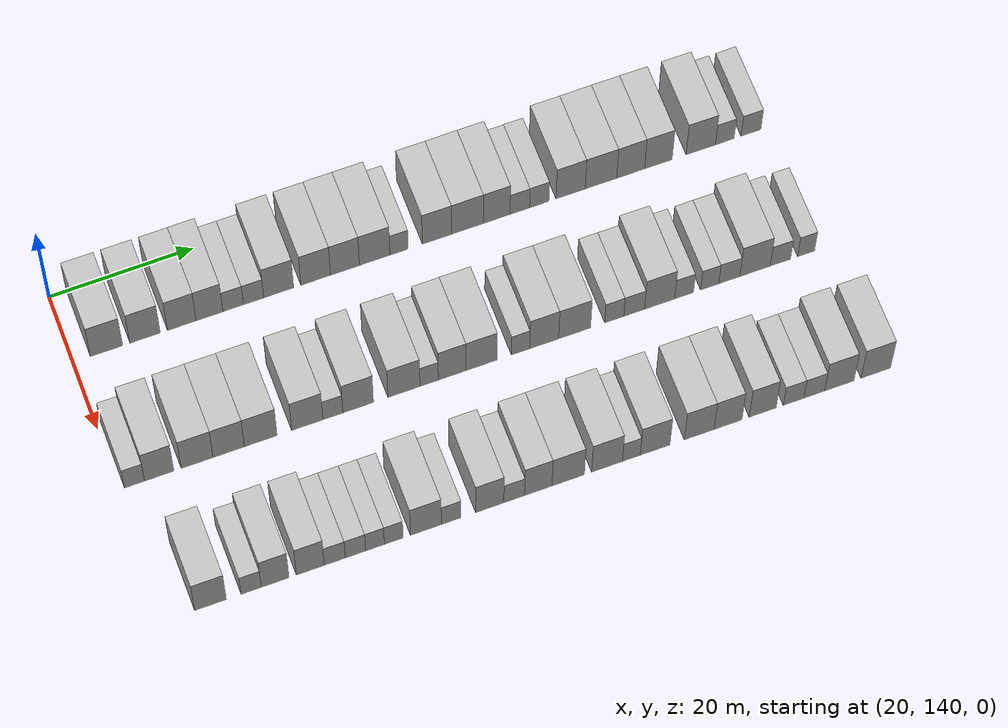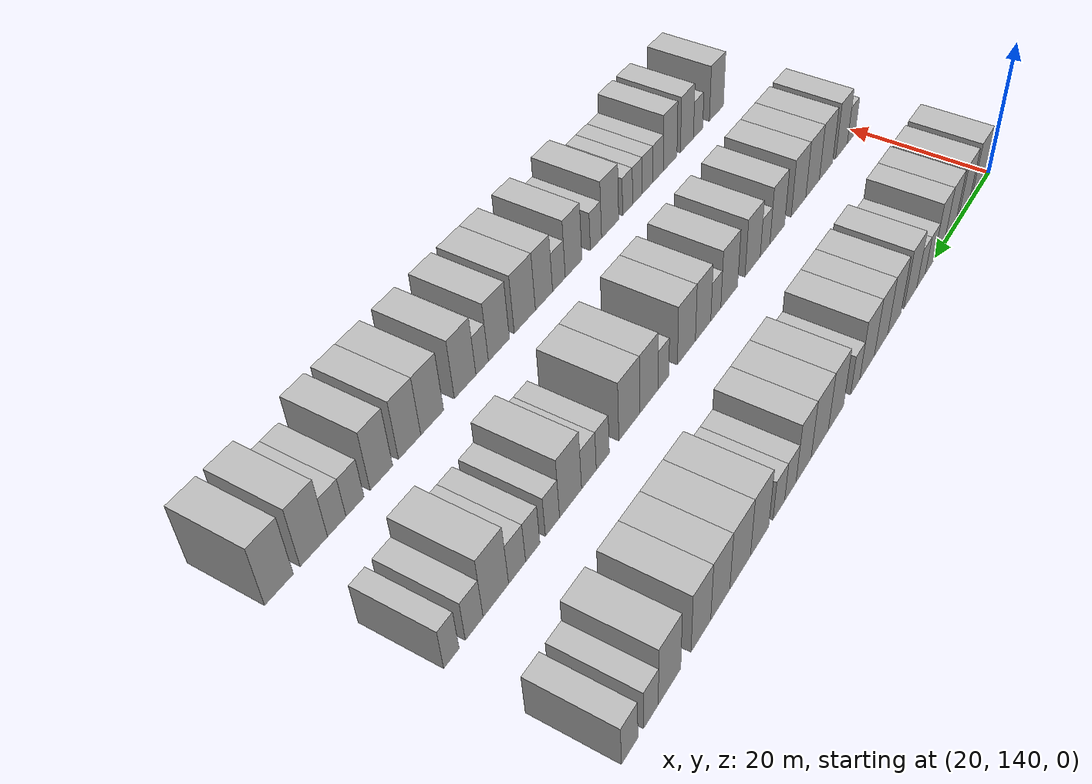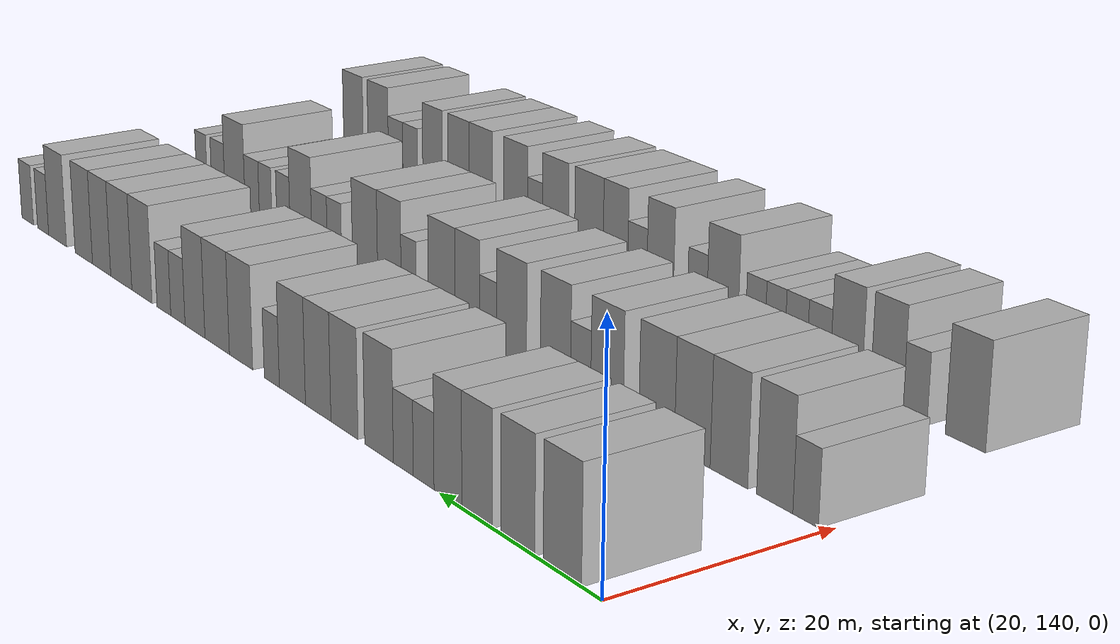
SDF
<sdf version="1.6">
 <world name="default">
  <model name="building_93">
   <static>1</static>
   <pose>25.0000 144.5838 0 0.000000 0.000000 0.000000</pose>
   <link name="link">
    <pose>0 0 4.50 0 0 0</pose>
    <collision name="collision"><geometry><box><size>10.0000 4.4687 9.0000</size></box></geometry></collision>
    <visual name="visual">
     <cast_shadows>0</cast_shadows>
     <geometry><box><size>10.0000 4.4687 9.0000</size></box></geometry>
     <material>
      <script>
       <uri>model://HANNAS_wall/materials/scripts</uri>
       <uri>model://HANNAS_wall/materials/textures</uri>
       <name>vrc/HANNAS_wall</name>
      </script>
     </material>
    </visual>
   </link>
  </model>
  <model name="building_94">
   <static>1</static>
   <pose>25.0000 149.9171 0 0.000000 0.000000 0.000000</pose>
   <link name="link">
    <pose>0 0 4.50 0 0 0</pose>
    <collision name="collision"><geometry><box><size>10.0000 4.1978 9.0000</size></box></geometry></collision>
    <visual name="visual">
     <cast_shadows>0</cast_shadows>
     <geometry><box><size>10.0000 4.1978 9.0000</size></box></geometry>
     <material>
      <script>
       <uri>model://HANNAS_wall/materials/scripts</uri>
       <uri>model://HANNAS_wall/materials/textures</uri>
       <name>vrc/HANNAS_wall</name>
      </script>
     </material>
    </visual>
   </link>
  </model>
  <model name="building_95">
   <static>1</static>
   <pose>25.0000 155.0053 0 0.000000 0.000000 0.000000</pose>
   <link name="link">
    <pose>0 0 4.50 0 0 0</pose>
    <collision name="collision"><geometry><box><size>10.0000 3.9786 9.0000</size></box></geometry></collision>
    <visual name="visual">
     <cast_shadows>0</cast_shadows>
     <geometry><box><size>10.0000 3.9786 9.0000</size></box></geometry>
     <material>
      <script>
       <uri>model://HANNAS_wall/materials/scripts</uri>
       <uri>model://HANNAS_wall/materials/textures</uri>
       <name>vrc/HANNAS_wall</name>
      </script>
     </material>
    </visual>
   </link>
  </model>
  <model name="building_96">
   <static>1</static>
   <pose>25.0000 158.8555 0 0.000000 0.000000 0.000000</pose>
   <link name="link">
    <pose>0 0 4.50 0 0 0</pose>
    <collision name="collision"><geometry><box><size>10.0000 3.7219 9.0000</size></box></geometry></collision>
    <visual name="visual">
     <cast_shadows>0</cast_shadows>
     <geometry><box><size>10.0000 3.7219 9.0000</size></box></geometry>
     <material>
      <script>
       <uri>model://HANNAS_wall/materials/scripts</uri>
       <uri>model://HANNAS_wall/materials/textures</uri>
       <name>vrc/HANNAS_wall</name>
      </script>
     </material>
    </visual>
   </link>
  </model>
  <model name="building_97">
   <static>1</static>
   <pose>25.0000 162.1447 0 0.000000 0.000000 0.000000</pose>
   <link name="link">
    <pose>0 0 3.00 0 0 0</pose>
    <collision name="collision"><geometry><box><size>10.0000 2.8566 6.0000</size></box></geometry></collision>
    <visual name="visual">
     <cast_shadows>0</cast_shadows>
     <geometry><box><size>10.0000 2.8566 6.0000</size></box></geometry>
     <material>
      <script>
       <uri>model://HANNAS_wall/materials/scripts</uri>
       <uri>model://HANNAS_wall/materials/textures</uri>
       <name>vrc/HANNAS_wall</name>
      </script>
     </material>
    </visual>
   </link>
  </model>
  <model name="building_98">
   <static>1</static>
   <pose>25.0000 164.9886 0 0.000000 0.000000 0.000000</pose>
   <link name="link">
    <pose>0 0 3.00 0 0 0</pose>
    <collision name="collision"><geometry><box><size>10.0000 2.8312 6.0000</size></box></geometry></collision>
    <visual name="visual">
     <cast_shadows>0</cast_shadows>
     <geometry><box><size>10.0000 2.8312 6.0000</size></box></geometry>
     <material>
      <script>
       <uri>model://HANNAS_wall/materials/scripts</uri>
       <uri>model://HANNAS_wall/materials/textures</uri>
       <name>vrc/HANNAS_wall</name>
      </script>
     </material>
    </visual>
   </link>
  </model>
  <model name="building_99">
   <static>1</static>
   <pose>25.0000 168.5003 0 0.000000 0.000000 0.000000</pose>
   <link name="link">
    <pose>0 0 4.50 0 0 0</pose>
    <collision name="collision"><geometry><box><size>10.0000 4.1922 9.0000</size></box></geometry></collision>
    <visual name="visual">
     <cast_shadows>0</cast_shadows>
     <geometry><box><size>10.0000 4.1922 9.0000</size></box></geometry>
     <material>
      <script>
       <uri>model://HANNAS_wall/materials/scripts</uri>
       <uri>model://HANNAS_wall/materials/textures</uri>
       <name>vrc/HANNAS_wall</name>
      </script>
     </material>
    </visual>
   </link>
  </model>
  <model name="building_100">
   <static>1</static>
   <pose>25.0000 173.6730 0 0.000000 0.000000 0.000000</pose>
   <link name="link">
    <pose>0 0 4.50 0 0 0</pose>
    <collision name="collision"><geometry><box><size>10.0000 4.1533 9.0000</size></box></geometry></collision>
    <visual name="visual">
     <cast_shadows>0</cast_shadows>
     <geometry><box><size>10.0000 4.1533 9.0000</size></box></geometry>
     <material>
      <script>
       <uri>model://HANNAS_wall/materials/scripts</uri>
       <uri>model://HANNAS_wall/materials/textures</uri>
       <name>vrc/HANNAS_wall</name>
      </script>
     </material>
    </visual>
   </link>
  </model>
  <model name="building_101">
   <static>1</static>
   <pose>25.0000 177.7759 0 0.000000 0.000000 0.000000</pose>
   <link name="link">
    <pose>0 0 4.50 0 0 0</pose>
    <collision name="collision"><geometry><box><size>10.0000 4.0525 9.0000</size></box></geometry></collision>
    <visual name="visual">
     <cast_shadows>0</cast_shadows>
     <geometry><box><size>10.0000 4.0525 9.0000</size></box></geometry>
     <material>
      <script>
       <uri>model://HANNAS_wall/materials/scripts</uri>
       <uri>model://HANNAS_wall/materials/textures</uri>
       <name>vrc/HANNAS_wall</name>
      </script>
     </material>
    </visual>
   </link>
  </model>
  <model name="building_102">
   <static>1</static>
   <pose>25.0000 181.9465 0 0.000000 0.000000 0.000000</pose>
   <link name="link">
    <pose>0 0 4.50 0 0 0</pose>
    <collision name="collision"><geometry><box><size>10.0000 4.2887 9.0000</size></box></geometry></collision>
    <visual name="visual">
     <cast_shadows>0</cast_shadows>
     <geometry><box><size>10.0000 4.2887 9.0000</size></box></geometry>
     <material>
      <script>
       <uri>model://HANNAS_wall/materials/scripts</uri>
       <uri>model://HANNAS_wall/materials/textures</uri>
       <name>vrc/HANNAS_wall</name>
      </script>
     </material>
    </visual>
   </link>
  </model>
  <model name="building_103">
   <static>1</static>
   <pose>25.0000 185.3738 0 0.000000 0.000000 0.000000</pose>
   <link name="link">
    <pose>0 0 3.00 0 0 0</pose>
    <collision name="collision"><geometry><box><size>10.0000 2.5660 6.0000</size></box></geometry></collision>
    <visual name="visual">
     <cast_shadows>0</cast_shadows>
     <geometry><box><size>10.0000 2.5660 6.0000</size></box></geometry>
     <material>
      <script>
       <uri>model://HANNAS_wall/materials/scripts</uri>
       <uri>model://HANNAS_wall/materials/textures</uri>
       <name>vrc/HANNAS_wall</name>
      </script>
     </material>
    </visual>
   </link>
  </model>
  <model name="building_104">
   <static>1</static>
   <pose>25.0000 190.7271 0 0.000000 0.000000 0.000000</pose>
   <link name="link">
    <pose>0 0 4.50 0 0 0</pose>
    <collision name="collision"><geometry><box><size>10.0000 4.1405 9.0000</size></box></geometry></collision>
    <visual name="visual">
     <cast_shadows>0</cast_shadows>
     <geometry><box><size>10.0000 4.1405 9.0000</size></box></geometry>
     <material>
      <script>
       <uri>model://HANNAS_wall/materials/scripts</uri>
       <uri>model://HANNAS_wall/materials/textures</uri>
       <name>vrc/HANNAS_wall</name>
      </script>
     </material>
    </visual>
   </link>
  </model>
  <model name="building_105">
   <static>1</static>
   <pose>25.0000 195.0423 0 0.000000 0.000000 0.000000</pose>
   <link name="link">
    <pose>0 0 4.50 0 0 0</pose>
    <collision name="collision"><geometry><box><size>10.0000 4.4898 9.0000</size></box></geometry></collision>
    <visual name="visual">
     <cast_shadows>0</cast_shadows>
     <geometry><box><size>10.0000 4.4898 9.0000</size></box></geometry>
     <material>
      <script>
       <uri>model://HANNAS_wall/materials/scripts</uri>
       <uri>model://HANNAS_wall/materials/textures</uri>
       <name>vrc/HANNAS_wall</name>
      </script>
     </material>
    </visual>
   </link>
  </model>
  <model name="building_106">
   <static>1</static>
   <pose>25.0000 199.1777 0 0.000000 0.000000 0.000000</pose>
   <link name="link">
    <pose>0 0 4.50 0 0 0</pose>
    <collision name="collision"><geometry><box><size>10.0000 3.7812 9.0000</size></box></geometry></collision>
    <visual name="visual">
     <cast_shadows>0</cast_shadows>
     <geometry><box><size>10.0000 3.7812 9.0000</size></box></geometry>
     <material>
      <script>
       <uri>model://HANNAS_wall/materials/scripts</uri>
       <uri>model://HANNAS_wall/materials/textures</uri>
       <name>vrc/HANNAS_wall</name>
      </script>
     </material>
    </visual>
   </link>
  </model>
  <model name="building_107">
   <static>1</static>
   <pose>25.0000 202.4531 0 0.000000 0.000000 0.000000</pose>
   <link name="link">
    <pose>0 0 3.00 0 0 0</pose>
    <collision name="collision"><geometry><box><size>10.0000 2.7696 6.0000</size></box></geometry></collision>
    <visual name="visual">
     <cast_shadows>0</cast_shadows>
     <geometry><box><size>10.0000 2.7696 6.0000</size></box></geometry>
     <material>
      <script>
       <uri>model://HANNAS_wall/materials/scripts</uri>
       <uri>model://HANNAS_wall/materials/textures</uri>
       <name>vrc/HANNAS_wall</name>
      </script>
     </material>
    </visual>
   </link>
  </model>
  <model name="building_108">
   <static>1</static>
   <pose>25.0000 205.2136 0 0.000000 0.000000 0.000000</pose>
   <link name="link">
    <pose>0 0 3.00 0 0 0</pose>
    <collision name="collision"><geometry><box><size>10.0000 2.7514 6.0000</size></box></geometry></collision>
    <visual name="visual">
     <cast_shadows>0</cast_shadows>
     <geometry><box><size>10.0000 2.7514 6.0000</size></box></geometry>
     <material>
      <script>
       <uri>model://HANNAS_wall/materials/scripts</uri>
       <uri>model://HANNAS_wall/materials/textures</uri>
       <name>vrc/HANNAS_wall</name>
      </script>
     </material>
    </visual>
   </link>
  </model>
  <model name="building_109">
   <static>1</static>
   <pose>25.0000 209.6725 0 0.000000 0.000000 0.000000</pose>
   <link name="link">
    <pose>0 0 4.50 0 0 0</pose>
    <collision name="collision"><geometry><box><size>10.0000 4.1665 9.0000</size></box></geometry></collision>
    <visual name="visual">
     <cast_shadows>0</cast_shadows>
     <geometry><box><size>10.0000 4.1665 9.0000</size></box></geometry>
     <material>
      <script>
       <uri>model://HANNAS_wall/materials/scripts</uri>
       <uri>model://HANNAS_wall/materials/textures</uri>
       <name>vrc/HANNAS_wall</name>
      </script>
     </material>
    </visual>
   </link>
  </model>
  <model name="building_110">
   <static>1</static>
   <pose>25.0000 214.0048 0 0.000000 0.000000 0.000000</pose>
   <link name="link">
    <pose>0 0 4.50 0 0 0</pose>
    <collision name="collision"><geometry><box><size>10.0000 4.4981 9.0000</size></box></geometry></collision>
    <visual name="visual">
     <cast_shadows>0</cast_shadows>
     <geometry><box><size>10.0000 4.4981 9.0000</size></box></geometry>
     <material>
      <script>
       <uri>model://HANNAS_wall/materials/scripts</uri>
       <uri>model://HANNAS_wall/materials/textures</uri>
       <name>vrc/HANNAS_wall</name>
      </script>
     </material>
    </visual>
   </link>
  </model>
  <model name="building_111">
   <static>1</static>
   <pose>25.0000 218.2558 0 0.000000 0.000000 0.000000</pose>
   <link name="link">
    <pose>0 0 4.50 0 0 0</pose>
    <collision name="collision"><geometry><box><size>10.0000 4.0040 9.0000</size></box></geometry></collision>
    <visual name="visual">
     <cast_shadows>0</cast_shadows>
     <geometry><box><size>10.0000 4.0040 9.0000</size></box></geometry>
     <material>
      <script>
       <uri>model://HANNAS_wall/materials/scripts</uri>
       <uri>model://HANNAS_wall/materials/textures</uri>
       <name>vrc/HANNAS_wall</name>
      </script>
     </material>
    </visual>
   </link>
  </model>
  <model name="building_112">
   <static>1</static>
   <pose>25.0000 222.2259 0 0.000000 0.000000 0.000000</pose>
   <link name="link">
    <pose>0 0 4.50 0 0 0</pose>
    <collision name="collision"><geometry><box><size>10.0000 3.9362 9.0000</size></box></geometry></collision>
    <visual name="visual">
     <cast_shadows>0</cast_shadows>
     <geometry><box><size>10.0000 3.9362 9.0000</size></box></geometry>
     <material>
      <script>
       <uri>model://HANNAS_wall/materials/scripts</uri>
       <uri>model://HANNAS_wall/materials/textures</uri>
       <name>vrc/HANNAS_wall</name>
      </script>
     </material>
    </visual>
   </link>
  </model>
  <model name="building_113">
   <static>1</static>
   <pose>25.0000 228.3020 0 0.000000 0.000000 0.000000</pose>
   <link name="link">
    <pose>0 0 4.50 0 0 0</pose>
    <collision name="collision"><geometry><box><size>10.0000 4.2160 9.0000</size></box></geometry></collision>
    <visual name="visual">
     <cast_shadows>0</cast_shadows>
     <geometry><box><size>10.0000 4.2160 9.0000</size></box></geometry>
     <material>
      <script>
       <uri>model://HANNAS_wall/materials/scripts</uri>
       <uri>model://HANNAS_wall/materials/textures</uri>
       <name>vrc/HANNAS_wall</name>
      </script>
     </material>
    </visual>
   </link>
  </model>
  <model name="building_114">
   <static>1</static>
   <pose>25.0000 231.7556 0 0.000000 0.000000 0.000000</pose>
   <link name="link">
    <pose>0 0 3.00 0 0 0</pose>
    <collision name="collision"><geometry><box><size>10.0000 2.6911 6.0000</size></box></geometry></collision>
    <visual name="visual">
     <cast_shadows>0</cast_shadows>
     <geometry><box><size>10.0000 2.6911 6.0000</size></box></geometry>
     <material>
      <script>
       <uri>model://HANNAS_wall/materials/scripts</uri>
       <uri>model://HANNAS_wall/materials/textures</uri>
       <name>vrc/HANNAS_wall</name>
      </script>
     </material>
    </visual>
   </link>
  </model>
  <model name="building_115">
   <static>1</static>
   <pose>25.0000 235.5366 0 0.000000 0.000000 0.000000</pose>
   <link name="link">
    <pose>0 0 3.00 0 0 0</pose>
    <collision name="collision"><geometry><box><size>10.0000 2.8711 6.0000</size></box></geometry></collision>
    <visual name="visual">
     <cast_shadows>0</cast_shadows>
     <geometry><box><size>10.0000 2.8711 6.0000</size></box></geometry>
     <material>
      <script>
       <uri>model://HANNAS_wall/materials/scripts</uri>
       <uri>model://HANNAS_wall/materials/textures</uri>
       <name>vrc/HANNAS_wall</name>
      </script>
     </material>
    </visual>
   </link>
  </model>
  <model name="building_211">
   <static>1</static>
   <pose>44.0000 142.0426 0 0.000000 0.000000 0.000000</pose>
   <link name="link">
    <pose>0 0 3.00 0 0 0</pose>
    <collision name="collision"><geometry><box><size>10.0000 2.7430 6.0000</size></box></geometry></collision>
    <visual name="visual">
     <cast_shadows>0</cast_shadows>
     <geometry><box><size>10.0000 2.7430 6.0000</size></box></geometry>
     <material>
      <script>
       <uri>model://HANNAS_wall/materials/scripts</uri>
       <uri>model://HANNAS_wall/materials/textures</uri>
       <name>vrc/HANNAS_wall</name>
      </script>
     </material>
    </visual>
   </link>
  </model>
  <model name="building_212">
   <static>1</static>
   <pose>44.0000 145.4141 0 0.000000 0.000000 0.000000</pose>
   <link name="link">
    <pose>0 0 4.50 0 0 0</pose>
    <collision name="collision"><geometry><box><size>10.0000 4.0000 9.0000</size></box></geometry></collision>
    <visual name="visual">
     <cast_shadows>0</cast_shadows>
     <geometry><box><size>10.0000 4.0000 9.0000</size></box></geometry>
     <material>
      <script>
       <uri>model://HANNAS_wall/materials/scripts</uri>
       <uri>model://HANNAS_wall/materials/textures</uri>
       <name>vrc/HANNAS_wall</name>
      </script>
     </material>
    </visual>
   </link>
  </model>
  <model name="building_213">
   <static>1</static>
   <pose>44.0000 150.5980 0 0.000000 0.000000 0.000000</pose>
   <link name="link">
    <pose>0 0 4.50 0 0 0</pose>
    <collision name="collision"><geometry><box><size>10.0000 4.3679 9.0000</size></box></geometry></collision>
    <visual name="visual">
     <cast_shadows>0</cast_shadows>
     <geometry><box><size>10.0000 4.3679 9.0000</size></box></geometry>
     <material>
      <script>
       <uri>model://HANNAS_wall/materials/scripts</uri>
       <uri>model://HANNAS_wall/materials/textures</uri>
       <name>vrc/HANNAS_wall</name>
      </script>
     </material>
    </visual>
   </link>
  </model>
  <model name="building_214">
   <static>1</static>
   <pose>44.0000 154.9379 0 0.000000 0.000000 0.000000</pose>
   <link name="link">
    <pose>0 0 4.50 0 0 0</pose>
    <collision name="collision"><geometry><box><size>10.0000 4.3117 9.0000</size></box></geometry></collision>
    <visual name="visual">
     <cast_shadows>0</cast_shadows>
     <geometry><box><size>10.0000 4.3117 9.0000</size></box></geometry>
     <material>
      <script>
       <uri>model://HANNAS_wall/materials/scripts</uri>
       <uri>model://HANNAS_wall/materials/textures</uri>
       <name>vrc/HANNAS_wall</name>
      </script>
     </material>
    </visual>
   </link>
  </model>
  <model name="building_215">
   <static>1</static>
   <pose>44.0000 159.3380 0 0.000000 0.000000 0.000000</pose>
   <link name="link">
    <pose>0 0 4.50 0 0 0</pose>
    <collision name="collision"><geometry><box><size>10.0000 4.4886 9.0000</size></box></geometry></collision>
    <visual name="visual">
     <cast_shadows>0</cast_shadows>
     <geometry><box><size>10.0000 4.4886 9.0000</size></box></geometry>
     <material>
      <script>
       <uri>model://HANNAS_wall/materials/scripts</uri>
       <uri>model://HANNAS_wall/materials/textures</uri>
       <name>vrc/HANNAS_wall</name>
      </script>
     </material>
    </visual>
   </link>
  </model>
  <model name="building_216">
   <static>1</static>
   <pose>44.0000 165.7396 0 0.000000 0.000000 0.000000</pose>
   <link name="link">
    <pose>0 0 4.50 0 0 0</pose>
    <collision name="collision"><geometry><box><size>10.0000 4.3144 9.0000</size></box></geometry></collision>
    <visual name="visual">
     <cast_shadows>0</cast_shadows>
     <geometry><box><size>10.0000 4.3144 9.0000</size></box></geometry>
     <material>
      <script>
       <uri>model://HANNAS_wall/materials/scripts</uri>
       <uri>model://HANNAS_wall/materials/textures</uri>
       <name>vrc/HANNAS_wall</name>
      </script>
     </material>
    </visual>
   </link>
  </model>
  <model name="building_217">
   <static>1</static>
   <pose>44.0000 169.2793 0 0.000000 0.000000 0.000000</pose>
   <link name="link">
    <pose>0 0 3.00 0 0 0</pose>
    <collision name="collision"><geometry><box><size>10.0000 2.7649 6.0000</size></box></geometry></collision>
    <visual name="visual">
     <cast_shadows>0</cast_shadows>
     <geometry><box><size>10.0000 2.7649 6.0000</size></box></geometry>
     <material>
      <script>
       <uri>model://HANNAS_wall/materials/scripts</uri>
       <uri>model://HANNAS_wall/materials/textures</uri>
       <name>vrc/HANNAS_wall</name>
      </script>
     </material>
    </visual>
   </link>
  </model>
  <model name="building_218">
   <static>1</static>
   <pose>44.0000 172.7799 0 0.000000 0.000000 0.000000</pose>
   <link name="link">
    <pose>0 0 4.50 0 0 0</pose>
    <collision name="collision"><geometry><box><size>10.0000 4.2364 9.0000</size></box></geometry></collision>
    <visual name="visual">
     <cast_shadows>0</cast_shadows>
     <geometry><box><size>10.0000 4.2364 9.0000</size></box></geometry>
     <material>
      <script>
       <uri>model://HANNAS_wall/materials/scripts</uri>
       <uri>model://HANNAS_wall/materials/textures</uri>
       <name>vrc/HANNAS_wall</name>
      </script>
     </material>
    </visual>
   </link>
  </model>
  <model name="building_219">
   <static>1</static>
   <pose>44.0000 179.1255 0 0.000000 0.000000 0.000000</pose>
   <link name="link">
    <pose>0 0 4.50 0 0 0</pose>
    <collision name="collision"><geometry><box><size>10.0000 4.4547 9.0000</size></box></geometry></collision>
    <visual name="visual">
     <cast_shadows>0</cast_shadows>
     <geometry><box><size>10.0000 4.4547 9.0000</size></box></geometry>
     <material>
      <script>
       <uri>model://HANNAS_wall/materials/scripts</uri>
       <uri>model://HANNAS_wall/materials/textures</uri>
       <name>vrc/HANNAS_wall</name>
      </script>
     </material>
    </visual>
   </link>
  </model>
  <model name="building_220">
   <static>1</static>
   <pose>44.0000 182.6356 0 0.000000 0.000000 0.000000</pose>
   <link name="link">
    <pose>0 0 3.00 0 0 0</pose>
    <collision name="collision"><geometry><box><size>10.0000 2.5657 6.0000</size></box></geometry></collision>
    <visual name="visual">
     <cast_shadows>0</cast_shadows>
     <geometry><box><size>10.0000 2.5657 6.0000</size></box></geometry>
     <material>
      <script>
       <uri>model://HANNAS_wall/materials/scripts</uri>
       <uri>model://HANNAS_wall/materials/textures</uri>
       <name>vrc/HANNAS_wall</name>
      </script>
     </material>
    </visual>
   </link>
  </model>
  <model name="building_221">
   <static>1</static>
   <pose>44.0000 185.8423 0 0.000000 0.000000 0.000000</pose>
   <link name="link">
    <pose>0 0 4.50 0 0 0</pose>
    <collision name="collision"><geometry><box><size>10.0000 3.8478 9.0000</size></box></geometry></collision>
    <visual name="visual">
     <cast_shadows>0</cast_shadows>
     <geometry><box><size>10.0000 3.8478 9.0000</size></box></geometry>
     <material>
      <script>
       <uri>model://HANNAS_wall/materials/scripts</uri>
       <uri>model://HANNAS_wall/materials/textures</uri>
       <name>vrc/HANNAS_wall</name>
      </script>
     </material>
    </visual>
   </link>
  </model>
  <model name="building_222">
   <static>1</static>
   <pose>44.0000 189.9353 0 0.000000 0.000000 0.000000</pose>
   <link name="link">
    <pose>0 0 4.50 0 0 0</pose>
    <collision name="collision"><geometry><box><size>10.0000 4.3381 9.0000</size></box></geometry></collision>
    <visual name="visual">
     <cast_shadows>0</cast_shadows>
     <geometry><box><size>10.0000 4.3381 9.0000</size></box></geometry>
     <material>
      <script>
       <uri>model://HANNAS_wall/materials/scripts</uri>
       <uri>model://HANNAS_wall/materials/textures</uri>
       <name>vrc/HANNAS_wall</name>
      </script>
     </material>
    </visual>
   </link>
  </model>
  <model name="building_223">
   <static>1</static>
   <pose>44.0000 195.3782 0 0.000000 0.000000 0.000000</pose>
   <link name="link">
    <pose>0 0 3.00 0 0 0</pose>
    <collision name="collision"><geometry><box><size>10.0000 2.5475 6.0000</size></box></geometry></collision>
    <visual name="visual">
     <cast_shadows>0</cast_shadows>
     <geometry><box><size>10.0000 2.5475 6.0000</size></box></geometry>
     <material>
      <script>
       <uri>model://HANNAS_wall/materials/scripts</uri>
       <uri>model://HANNAS_wall/materials/textures</uri>
       <name>vrc/HANNAS_wall</name>
      </script>
     </material>
    </visual>
   </link>
  </model>
  <model name="building_224">
   <static>1</static>
   <pose>44.0000 198.6900 0 0.000000 0.000000 0.000000</pose>
   <link name="link">
    <pose>0 0 4.50 0 0 0</pose>
    <collision name="collision"><geometry><box><size>10.0000 4.0762 9.0000</size></box></geometry></collision>
    <visual name="visual">
     <cast_shadows>0</cast_shadows>
     <geometry><box><size>10.0000 4.0762 9.0000</size></box></geometry>
     <material>
      <script>
       <uri>model://HANNAS_wall/materials/scripts</uri>
       <uri>model://HANNAS_wall/materials/textures</uri>
       <name>vrc/HANNAS_wall</name>
      </script>
     </material>
    </visual>
   </link>
  </model>
  <model name="building_225">
   <static>1</static>
   <pose>44.0000 202.9722 0 0.000000 0.000000 0.000000</pose>
   <link name="link">
    <pose>0 0 4.50 0 0 0</pose>
    <collision name="collision"><geometry><box><size>10.0000 4.4882 9.0000</size></box></geometry></collision>
    <visual name="visual">
     <cast_shadows>0</cast_shadows>
     <geometry><box><size>10.0000 4.4882 9.0000</size></box></geometry>
     <material>
      <script>
       <uri>model://HANNAS_wall/materials/scripts</uri>
       <uri>model://HANNAS_wall/materials/textures</uri>
       <name>vrc/HANNAS_wall</name>
      </script>
     </material>
    </visual>
   </link>
  </model>
  <model name="building_226">
   <static>1</static>
   <pose>44.0000 208.5529 0 0.000000 0.000000 0.000000</pose>
   <link name="link">
    <pose>0 0 3.00 0 0 0</pose>
    <collision name="collision"><geometry><box><size>10.0000 2.6731 6.0000</size></box></geometry></collision>
    <visual name="visual">
     <cast_shadows>0</cast_shadows>
     <geometry><box><size>10.0000 2.6731 6.0000</size></box></geometry>
     <material>
      <script>
       <uri>model://HANNAS_wall/materials/scripts</uri>
       <uri>model://HANNAS_wall/materials/textures</uri>
       <name>vrc/HANNAS_wall</name>
      </script>
     </material>
    </visual>
   </link>
  </model>
  <model name="building_227">
   <static>1</static>
   <pose>44.0000 211.3593 0 0.000000 0.000000 0.000000</pose>
   <link name="link">
    <pose>0 0 3.00 0 0 0</pose>
    <collision name="collision"><geometry><box><size>10.0000 2.9397 6.0000</size></box></geometry></collision>
    <visual name="visual">
     <cast_shadows>0</cast_shadows>
     <geometry><box><size>10.0000 2.9397 6.0000</size></box></geometry>
     <material>
      <script>
       <uri>model://HANNAS_wall/materials/scripts</uri>
       <uri>model://HANNAS_wall/materials/textures</uri>
       <name>vrc/HANNAS_wall</name>
      </script>
     </material>
    </visual>
   </link>
  </model>
  <model name="building_228">
   <static>1</static>
   <pose>44.0000 214.9542 0 0.000000 0.000000 0.000000</pose>
   <link name="link">
    <pose>0 0 4.50 0 0 0</pose>
    <collision name="collision"><geometry><box><size>10.0000 4.2501 9.0000</size></box></geometry></collision>
    <visual name="visual">
     <cast_shadows>0</cast_shadows>
     <geometry><box><size>10.0000 4.2501 9.0000</size></box></geometry>
     <material>
      <script>
       <uri>model://HANNAS_wall/materials/scripts</uri>
       <uri>model://HANNAS_wall/materials/textures</uri>
       <name>vrc/HANNAS_wall</name>
      </script>
     </material>
    </visual>
   </link>
  </model>
  <model name="building_229">
   <static>1</static>
   <pose>44.0000 218.4121 0 0.000000 0.000000 0.000000</pose>
   <link name="link">
    <pose>0 0 3.00 0 0 0</pose>
    <collision name="collision"><geometry><box><size>10.0000 2.6656 6.0000</size></box></geometry></collision>
    <visual name="visual">
     <cast_shadows>0</cast_shadows>
     <geometry><box><size>10.0000 2.6656 6.0000</size></box></geometry>
     <material>
      <script>
       <uri>model://HANNAS_wall/materials/scripts</uri>
       <uri>model://HANNAS_wall/materials/textures</uri>
       <name>vrc/HANNAS_wall</name>
      </script>
     </material>
    </visual>
   </link>
  </model>
  <model name="building_230">
   <static>1</static>
   <pose>44.0000 222.0370 0 0.000000 0.000000 0.000000</pose>
   <link name="link">
    <pose>0 0 3.00 0 0 0</pose>
    <collision name="collision"><geometry><box><size>10.0000 2.5842 6.0000</size></box></geometry></collision>
    <visual name="visual">
     <cast_shadows>0</cast_shadows>
     <geometry><box><size>10.0000 2.5842 6.0000</size></box></geometry>
     <material>
      <script>
       <uri>model://HANNAS_wall/materials/scripts</uri>
       <uri>model://HANNAS_wall/materials/textures</uri>
       <name>vrc/HANNAS_wall</name>
      </script>
     </material>
    </visual>
   </link>
  </model>
  <model name="building_231">
   <static>1</static>
   <pose>44.0000 224.8219 0 0.000000 0.000000 0.000000</pose>
   <link name="link">
    <pose>0 0 3.00 0 0 0</pose>
    <collision name="collision"><geometry><box><size>10.0000 2.9857 6.0000</size></box></geometry></collision>
    <visual name="visual">
     <cast_shadows>0</cast_shadows>
     <geometry><box><size>10.0000 2.9857 6.0000</size></box></geometry>
     <material>
      <script>
       <uri>model://HANNAS_wall/materials/scripts</uri>
       <uri>model://HANNAS_wall/materials/textures</uri>
       <name>vrc/HANNAS_wall</name>
      </script>
     </material>
    </visual>
   </link>
  </model>
  <model name="building_232">
   <static>1</static>
   <pose>44.0000 228.4789 0 0.000000 0.000000 0.000000</pose>
   <link name="link">
    <pose>0 0 4.50 0 0 0</pose>
    <collision name="collision"><geometry><box><size>10.0000 4.3283 9.0000</size></box></geometry></collision>
    <visual name="visual">
     <cast_shadows>0</cast_shadows>
     <geometry><box><size>10.0000 4.3283 9.0000</size></box></geometry>
     <material>
      <script>
       <uri>model://HANNAS_wall/materials/scripts</uri>
       <uri>model://HANNAS_wall/materials/textures</uri>
       <name>vrc/HANNAS_wall</name>
      </script>
     </material>
    </visual>
   </link>
  </model>
  <model name="building_233">
   <static>1</static>
   <pose>44.0000 232.0940 0 0.000000 0.000000 0.000000</pose>
   <link name="link">
    <pose>0 0 3.00 0 0 0</pose>
    <collision name="collision"><geometry><box><size>10.0000 2.9019 6.0000</size></box></geometry></collision>
    <visual name="visual">
     <cast_shadows>0</cast_shadows>
     <geometry><box><size>10.0000 2.9019 6.0000</size></box></geometry>
     <material>
      <script>
       <uri>model://HANNAS_wall/materials/scripts</uri>
       <uri>model://HANNAS_wall/materials/textures</uri>
       <name>vrc/HANNAS_wall</name>
      </script>
     </material>
    </visual>
   </link>
  </model>
  <model name="building_234">
   <static>1</static>
   <pose>44.0000 235.7570 0 0.000000 0.000000 0.000000</pose>
   <link name="link">
    <pose>0 0 3.00 0 0 0</pose>
    <collision name="collision"><geometry><box><size>10.0000 2.4241 6.0000</size></box></geometry></collision>
    <visual name="visual">
     <cast_shadows>0</cast_shadows>
     <geometry><box><size>10.0000 2.4241 6.0000</size></box></geometry>
     <material>
      <script>
       <uri>model://HANNAS_wall/materials/scripts</uri>
       <uri>model://HANNAS_wall/materials/textures</uri>
       <name>vrc/HANNAS_wall</name>
      </script>
     </material>
    </visual>
   </link>
  </model>
  <model name="building_332">
   <static>1</static>
   <pose>63.0000 145.8696 0 0.000000 0.000000 0.000000</pose>
   <link name="link">
    <pose>0 0 4.50 0 0 0</pose>
    <collision name="collision"><geometry><box><size>10.0000 4.2921 9.0000</size></box></geometry></collision>
    <visual name="visual">
     <cast_shadows>0</cast_shadows>
     <geometry><box><size>10.0000 4.2921 9.0000</size></box></geometry>
     <material>
      <script>
       <uri>model://HANNAS_wall/materials/scripts</uri>
       <uri>model://HANNAS_wall/materials/textures</uri>
       <name>vrc/HANNAS_wall</name>
      </script>
     </material>
    </visual>
   </link>
  </model>
  <model name="building_333">
   <static>1</static>
   <pose>63.0000 151.3840 0 0.000000 0.000000 0.000000</pose>
   <link name="link">
    <pose>0 0 3.00 0 0 0</pose>
    <collision name="collision"><geometry><box><size>10.0000 2.7366 6.0000</size></box></geometry></collision>
    <visual name="visual">
     <cast_shadows>0</cast_shadows>
     <geometry><box><size>10.0000 2.7366 6.0000</size></box></geometry>
     <material>
      <script>
       <uri>model://HANNAS_wall/materials/scripts</uri>
       <uri>model://HANNAS_wall/materials/textures</uri>
       <name>vrc/HANNAS_wall</name>
      </script>
     </material>
    </visual>
   </link>
  </model>
  <model name="building_334">
   <static>1</static>
   <pose>63.0000 154.6323 0 0.000000 0.000000 0.000000</pose>
   <link name="link">
    <pose>0 0 4.50 0 0 0</pose>
    <collision name="collision"><geometry><box><size>10.0000 3.7601 9.0000</size></box></geometry></collision>
    <visual name="visual">
     <cast_shadows>0</cast_shadows>
     <geometry><box><size>10.0000 3.7601 9.0000</size></box></geometry>
     <material>
      <script>
       <uri>model://HANNAS_wall/materials/scripts</uri>
       <uri>model://HANNAS_wall/materials/textures</uri>
       <name>vrc/HANNAS_wall</name>
      </script>
     </material>
    </visual>
   </link>
  </model>
  <model name="building_335">
   <static>1</static>
   <pose>63.0000 159.4116 0 0.000000 0.000000 0.000000</pose>
   <link name="link">
    <pose>0 0 4.50 0 0 0</pose>
    <collision name="collision"><geometry><box><size>10.0000 3.7984 9.0000</size></box></geometry></collision>
    <visual name="visual">
     <cast_shadows>0</cast_shadows>
     <geometry><box><size>10.0000 3.7984 9.0000</size></box></geometry>
     <material>
      <script>
       <uri>model://HANNAS_wall/materials/scripts</uri>
       <uri>model://HANNAS_wall/materials/textures</uri>
       <name>vrc/HANNAS_wall</name>
      </script>
     </material>
    </visual>
   </link>
  </model>
  <model name="building_336">
   <static>1</static>
   <pose>63.0000 162.7368 0 0.000000 0.000000 0.000000</pose>
   <link name="link">
    <pose>0 0 3.00 0 0 0</pose>
    <collision name="collision"><geometry><box><size>10.0000 2.8521 6.0000</size></box></geometry></collision>
    <visual name="visual">
     <cast_shadows>0</cast_shadows>
     <geometry><box><size>10.0000 2.8521 6.0000</size></box></geometry>
     <material>
      <script>
       <uri>model://HANNAS_wall/materials/scripts</uri>
       <uri>model://HANNAS_wall/materials/textures</uri>
       <name>vrc/HANNAS_wall</name>
      </script>
     </material>
    </visual>
   </link>
  </model>
  <model name="building_337">
   <static>1</static>
   <pose>63.0000 165.5615 0 0.000000 0.000000 0.000000</pose>
   <link name="link">
    <pose>0 0 3.00 0 0 0</pose>
    <collision name="collision"><geometry><box><size>10.0000 2.7973 6.0000</size></box></geometry></collision>
    <visual name="visual">
     <cast_shadows>0</cast_shadows>
     <geometry><box><size>10.0000 2.7973 6.0000</size></box></geometry>
     <material>
      <script>
       <uri>model://HANNAS_wall/materials/scripts</uri>
       <uri>model://HANNAS_wall/materials/textures</uri>
       <name>vrc/HANNAS_wall</name>
      </script>
     </material>
    </visual>
   </link>
  </model>
  <model name="building_338">
   <static>1</static>
   <pose>63.0000 168.2375 0 0.000000 0.000000 0.000000</pose>
   <link name="link">
    <pose>0 0 3.00 0 0 0</pose>
    <collision name="collision"><geometry><box><size>10.0000 2.5547 6.0000</size></box></geometry></collision>
    <visual name="visual">
     <cast_shadows>0</cast_shadows>
     <geometry><box><size>10.0000 2.5547 6.0000</size></box></geometry>
     <material>
      <script>
       <uri>model://HANNAS_wall/materials/scripts</uri>
       <uri>model://HANNAS_wall/materials/textures</uri>
       <name>vrc/HANNAS_wall</name>
      </script>
     </material>
    </visual>
   </link>
  </model>
  <model name="building_339">
   <static>1</static>
   <pose>63.0000 170.7932 0 0.000000 0.000000 0.000000</pose>
   <link name="link">
    <pose>0 0 3.00 0 0 0</pose>
    <collision name="collision"><geometry><box><size>10.0000 2.5567 6.0000</size></box></geometry></collision>
    <visual name="visual">
     <cast_shadows>0</cast_shadows>
     <geometry><box><size>10.0000 2.5567 6.0000</size></box></geometry>
     <material>
      <script>
       <uri>model://HANNAS_wall/materials/scripts</uri>
       <uri>model://HANNAS_wall/materials/textures</uri>
       <name>vrc/HANNAS_wall</name>
      </script>
     </material>
    </visual>
   </link>
  </model>
  <model name="building_340">
   <static>1</static>
   <pose>63.0000 175.1972 0 0.000000 0.000000 0.000000</pose>
   <link name="link">
    <pose>0 0 4.50 0 0 0</pose>
    <collision name="collision"><geometry><box><size>10.0000 4.2512 9.0000</size></box></geometry></collision>
    <visual name="visual">
     <cast_shadows>0</cast_shadows>
     <geometry><box><size>10.0000 4.2512 9.0000</size></box></geometry>
     <material>
      <script>
       <uri>model://HANNAS_wall/materials/scripts</uri>
       <uri>model://HANNAS_wall/materials/textures</uri>
       <name>vrc/HANNAS_wall</name>
      </script>
     </material>
    </visual>
   </link>
  </model>
  <model name="building_341">
   <static>1</static>
   <pose>63.0000 178.6735 0 0.000000 0.000000 0.000000</pose>
   <link name="link">
    <pose>0 0 3.00 0 0 0</pose>
    <collision name="collision"><geometry><box><size>10.0000 2.7014 6.0000</size></box></geometry></collision>
    <visual name="visual">
     <cast_shadows>0</cast_shadows>
     <geometry><box><size>10.0000 2.7014 6.0000</size></box></geometry>
     <material>
      <script>
       <uri>model://HANNAS_wall/materials/scripts</uri>
       <uri>model://HANNAS_wall/materials/textures</uri>
       <name>vrc/HANNAS_wall</name>
      </script>
     </material>
    </visual>
   </link>
  </model>
  <model name="building_342">
   <static>1</static>
   <pose>63.0000 183.9660 0 0.000000 0.000000 0.000000</pose>
   <link name="link">
    <pose>0 0 4.50 0 0 0</pose>
    <collision name="collision"><geometry><box><size>10.0000 3.8837 9.0000</size></box></geometry></collision>
    <visual name="visual">
     <cast_shadows>0</cast_shadows>
     <geometry><box><size>10.0000 3.8837 9.0000</size></box></geometry>
     <material>
      <script>
       <uri>model://HANNAS_wall/materials/scripts</uri>
       <uri>model://HANNAS_wall/materials/textures</uri>
       <name>vrc/HANNAS_wall</name>
      </script>
     </material>
    </visual>
   </link>
  </model>
  <model name="building_343">
   <static>1</static>
   <pose>63.0000 187.3399 0 0.000000 0.000000 0.000000</pose>
   <link name="link">
    <pose>0 0 3.00 0 0 0</pose>
    <collision name="collision"><geometry><box><size>10.0000 2.8640 6.0000</size></box></geometry></collision>
    <visual name="visual">
     <cast_shadows>0</cast_shadows>
     <geometry><box><size>10.0000 2.8640 6.0000</size></box></geometry>
     <material>
      <script>
       <uri>model://HANNAS_wall/materials/scripts</uri>
       <uri>model://HANNAS_wall/materials/textures</uri>
       <name>vrc/HANNAS_wall</name>
      </script>
     </material>
    </visual>
   </link>
  </model>
  <model name="building_344">
   <static>1</static>
   <pose>63.0000 190.6649 0 0.000000 0.000000 0.000000</pose>
   <link name="link">
    <pose>0 0 4.50 0 0 0</pose>
    <collision name="collision"><geometry><box><size>10.0000 3.7859 9.0000</size></box></geometry></collision>
    <visual name="visual">
     <cast_shadows>0</cast_shadows>
     <geometry><box><size>10.0000 3.7859 9.0000</size></box></geometry>
     <material>
      <script>
       <uri>model://HANNAS_wall/materials/scripts</uri>
       <uri>model://HANNAS_wall/materials/textures</uri>
       <name>vrc/HANNAS_wall</name>
      </script>
     </material>
    </visual>
   </link>
  </model>
  <model name="building_345">
   <static>1</static>
   <pose>63.0000 194.8047 0 0.000000 0.000000 0.000000</pose>
   <link name="link">
    <pose>0 0 4.50 0 0 0</pose>
    <collision name="collision"><geometry><box><size>10.0000 4.4938 9.0000</size></box></geometry></collision>
    <visual name="visual">
     <cast_shadows>0</cast_shadows>
     <geometry><box><size>10.0000 4.4938 9.0000</size></box></geometry>
     <material>
      <script>
       <uri>model://HANNAS_wall/materials/scripts</uri>
       <uri>model://HANNAS_wall/materials/textures</uri>
       <name>vrc/HANNAS_wall</name>
      </script>
     </material>
    </visual>
   </link>
  </model>
  <model name="building_346">
   <static>1</static>
   <pose>63.0000 200.1890 0 0.000000 0.000000 0.000000</pose>
   <link name="link">
    <pose>0 0 4.50 0 0 0</pose>
    <collision name="collision"><geometry><box><size>10.0000 4.2748 9.0000</size></box></geometry></collision>
    <visual name="visual">
     <cast_shadows>0</cast_shadows>
     <geometry><box><size>10.0000 4.2748 9.0000</size></box></geometry>
     <material>
      <script>
       <uri>model://HANNAS_wall/materials/scripts</uri>
       <uri>model://HANNAS_wall/materials/textures</uri>
       <name>vrc/HANNAS_wall</name>
      </script>
     </material>
    </visual>
   </link>
  </model>
  <model name="building_347">
   <static>1</static>
   <pose>63.0000 203.5612 0 0.000000 0.000000 0.000000</pose>
   <link name="link">
    <pose>0 0 3.00 0 0 0</pose>
    <collision name="collision"><geometry><box><size>10.0000 2.4696 6.0000</size></box></geometry></collision>
    <visual name="visual">
     <cast_shadows>0</cast_shadows>
     <geometry><box><size>10.0000 2.4696 6.0000</size></box></geometry>
     <material>
      <script>
       <uri>model://HANNAS_wall/materials/scripts</uri>
       <uri>model://HANNAS_wall/materials/textures</uri>
       <name>vrc/HANNAS_wall</name>
      </script>
     </material>
    </visual>
   </link>
  </model>
  <model name="building_348">
   <static>1</static>
   <pose>63.0000 206.8714 0 0.000000 0.000000 0.000000</pose>
   <link name="link">
    <pose>0 0 4.50 0 0 0</pose>
    <collision name="collision"><geometry><box><size>10.0000 4.1508 9.0000</size></box></geometry></collision>
    <visual name="visual">
     <cast_shadows>0</cast_shadows>
     <geometry><box><size>10.0000 4.1508 9.0000</size></box></geometry>
     <material>
      <script>
       <uri>model://HANNAS_wall/materials/scripts</uri>
       <uri>model://HANNAS_wall/materials/textures</uri>
       <name>vrc/HANNAS_wall</name>
      </script>
     </material>
    </visual>
   </link>
  </model>
  <model name="building_349">
   <static>1</static>
   <pose>63.0000 213.0209 0 0.000000 0.000000 0.000000</pose>
   <link name="link">
    <pose>0 0 4.50 0 0 0</pose>
    <collision name="collision"><geometry><box><size>10.0000 4.1484 9.0000</size></box></geometry></collision>
    <visual name="visual">
     <cast_shadows>0</cast_shadows>
     <geometry><box><size>10.0000 4.1484 9.0000</size></box></geometry>
     <material>
      <script>
       <uri>model://HANNAS_wall/materials/scripts</uri>
       <uri>model://HANNAS_wall/materials/textures</uri>
       <name>vrc/HANNAS_wall</name>
      </script>
     </material>
    </visual>
   </link>
  </model>
  <model name="building_350">
   <static>1</static>
   <pose>63.0000 217.0552 0 0.000000 0.000000 0.000000</pose>
   <link name="link">
    <pose>0 0 4.50 0 0 0</pose>
    <collision name="collision"><geometry><box><size>10.0000 3.9202 9.0000</size></box></geometry></collision>
    <visual name="visual">
     <cast_shadows>0</cast_shadows>
     <geometry><box><size>10.0000 3.9202 9.0000</size></box></geometry>
     <material>
      <script>
       <uri>model://HANNAS_wall/materials/scripts</uri>
       <uri>model://HANNAS_wall/materials/textures</uri>
       <name>vrc/HANNAS_wall</name>
      </script>
     </material>
    </visual>
   </link>
  </model>
  <model name="building_351">
   <static>1</static>
   <pose>63.0000 221.9079 0 0.000000 0.000000 0.000000</pose>
   <link name="link">
    <pose>0 0 4.50 0 0 0</pose>
    <collision name="collision"><geometry><box><size>10.0000 3.7853 9.0000</size></box></geometry></collision>
    <visual name="visual">
     <cast_shadows>0</cast_shadows>
     <geometry><box><size>10.0000 3.7853 9.0000</size></box></geometry>
     <material>
      <script>
       <uri>model://HANNAS_wall/materials/scripts</uri>
       <uri>model://HANNAS_wall/materials/textures</uri>
       <name>vrc/HANNAS_wall</name>
      </script>
     </material>
    </visual>
   </link>
  </model>
  <model name="building_352">
   <static>1</static>
   <pose>63.0000 226.2577 0 0.000000 0.000000 0.000000</pose>
   <link name="link">
    <pose>0 0 3.00 0 0 0</pose>
    <collision name="collision"><geometry><box><size>10.0000 2.9144 6.0000</size></box></geometry></collision>
    <visual name="visual">
     <cast_shadows>0</cast_shadows>
     <geometry><box><size>10.0000 2.9144 6.0000</size></box></geometry>
     <material>
      <script>
       <uri>model://HANNAS_wall/materials/scripts</uri>
       <uri>model://HANNAS_wall/materials/textures</uri>
       <name>vrc/HANNAS_wall</name>
      </script>
     </material>
    </visual>
   </link>
  </model>
  <model name="building_353">
   <static>1</static>
   <pose>63.0000 229.1621 0 0.000000 0.000000 0.000000</pose>
   <link name="link">
    <pose>0 0 3.00 0 0 0</pose>
    <collision name="collision"><geometry><box><size>10.0000 2.8945 6.0000</size></box></geometry></collision>
    <visual name="visual">
     <cast_shadows>0</cast_shadows>
     <geometry><box><size>10.0000 2.8945 6.0000</size></box></geometry>
     <material>
      <script>
       <uri>model://HANNAS_wall/materials/scripts</uri>
       <uri>model://HANNAS_wall/materials/textures</uri>
       <name>vrc/HANNAS_wall</name>
      </script>
     </material>
    </visual>
   </link>
  </model>
  <model name="building_354">
   <static>1</static>
   <pose>63.0000 232.6862 0 0.000000 0.000000 0.000000</pose>
   <link name="link">
    <pose>0 0 4.50 0 0 0</pose>
    <collision name="collision"><geometry><box><size>10.0000 4.1536 9.0000</size></box></geometry></collision>
    <visual name="visual">
     <cast_shadows>0</cast_shadows>
     <geometry><box><size>10.0000 4.1536 9.0000</size></box></geometry>
     <material>
      <script>
       <uri>model://HANNAS_wall/materials/scripts</uri>
       <uri>model://HANNAS_wall/materials/textures</uri>
       <name>vrc/HANNAS_wall</name>
      </script>
     </material>
    </visual>
   </link>
  </model>
  <model name="building_355">
   <static>1</static>
   <pose>63.0000 237.8425 0 0.000000 0.000000 0.000000</pose>
   <link name="link">
    <pose>0 0 4.50 0 0 0</pose>
    <collision name="collision"><geometry><box><size>10.0000 4.1591 9.0000</size></box></geometry></collision>
    <visual name="visual">
     <cast_shadows>0</cast_shadows>
     <geometry><box><size>10.0000 4.1591 9.0000</size></box></geometry>
     <material>
      <script>
       <uri>model://HANNAS_wall/materials/scripts</uri>
       <uri>model://HANNAS_wall/materials/textures</uri>
       <name>vrc/HANNAS_wall</name>
      </script>
     </material>
    </visual>
   </link>
  </model>
 </world>
</sdf>
